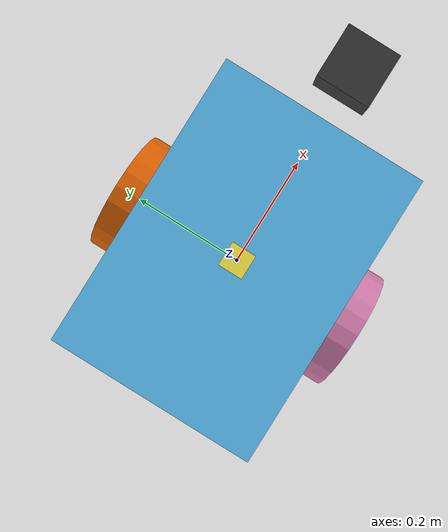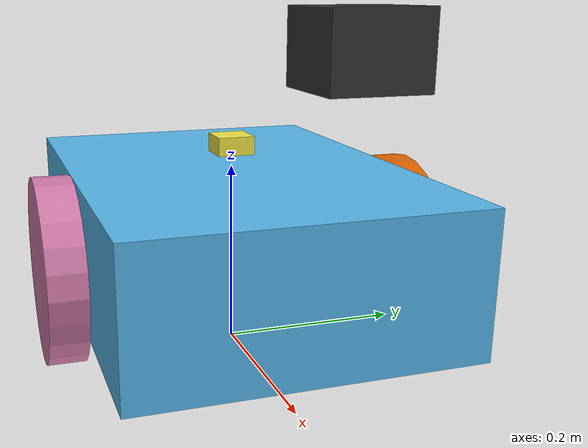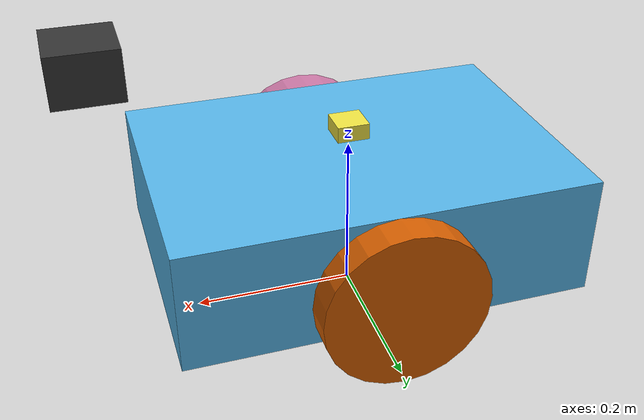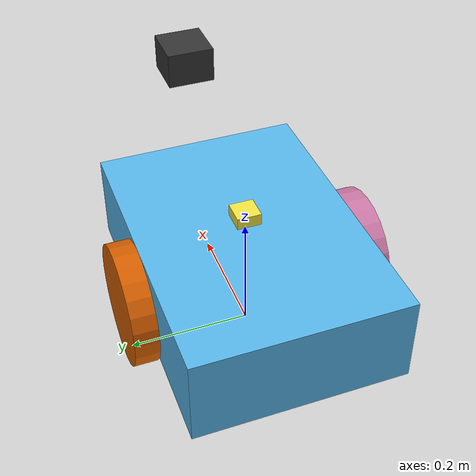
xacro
<?xml version="1.0"?>

<robot xmlns:xacro="http://www.ros.org/wiki/xacro">

    <!-- 机器人尺寸参数 -->

    <xacro:property name="base_length" value="0.50"/>
    <xacro:property name="base_width" value="0.35"/>
    <xacro:property name="base_height" value="0.15"/>

    <xacro:property name="wheel_radius" value="0.10"/>
    <xacro:property name="wheel_width" value="0.04"/>
    <xacro:property name="wheel_y" value="0.195"/>

    <!-- base_footprint -->

    <link name="base_footprint"/>

    <joint name="base_footprint_joint" type="fixed">

        <parent link="base_footprint"/>
        <child link="base_link"/>

        <origin xyz="0 0 0.125"
                rpy="0 0 0"/>

    </joint>

    <!-- base_link -->

    <link name="base_link">

        <visual>
            <origin xyz="0 0 0"
                    rpy="0 0 0"/>

            <geometry>
                <box size="${base_length}
                           ${base_width}
                           ${base_height}"/>
            </geometry>
        </visual>

        <collision>
            <origin xyz="0 0 0"
                    rpy="0 0 0"/>

            <geometry>
                <box size="${base_length}
                           ${base_width}
                           ${base_height}"/>
            </geometry>
        </collision>

        <inertial>
            <mass value="8.0"/>

            <!-- COM 后移 5cm：避免激光/相机前移使总 COM 越过驱动轮轴
                 支撑边界导致整车 nose-down 前倾（约 11.78°） -->
            <origin xyz="-0.05 0 0"
                    rpy="0 0 0"/>

            <inertia
                ixx="0.0967"
                ixy="0.0"
                ixz="0.0"
                iyy="0.1817"
                iyz="0.0"
                izz="0.2483"/>
        </inertial>

    </link>

    <link name='laser_link'>

        <inertial>
            <mass value="0.1"/>
            <origin xyz="0 0 0"/>
            <inertia
                ixx="0.0001"
                ixy="0.0"
                ixz="0.0"
                iyy="0.0001"
                iyz="0.0"
                izz="0.0001"/>
        </inertial>
    </link>

    <joint name="laser_joint" type="fixed">

        <parent link="base_link"/>
        <child link="laser_link"/>

        <origin xyz="0.5 0 0.12"
                rpy="0 0 0"/>
    </joint>

    <link name="imu_link">
        <visual>
         <geometry>
                <box size="0.04 0.04 0.02"/>
            </geometry>
        </visual>

        <collision>
            <geometry>
                <box size="0.04 0.04 0.02"/>
            </geometry>
        </collision>

        <inertial>
            <mass value="0.05"/>
            <inertia
            ixx="0.00001"
            ixy="0.0"
            ixz="0.0"
            iyy="0.00001"
            iyz="0.0"
            izz="0.00001"/>
        </inertial>
    </link>

    <joint name="imu_joint" type="fixed">
        <parent link="base_link"/>
        <child link="imu_link"/>
        <origin xyz="0 0 0.10" rpy="0 0 0"/>
    </joint>
    <gazebo reference="imu_joint">
        <preserveFixedJoint>true</preserveFixedJoint>
    </gazebo>

    <!-- Camera Link -->
<link name="camera_link">

    <visual>
        <origin xyz="0 0 0" rpy="0 0 0"/>
        <geometry>
            <box size="0.08 0.08 0.06"/>
        </geometry>
        <material name="camera_gray">
            <color rgba="0.2 0.2 0.2 1"/>
        </material>
    </visual>

    <collision>
        <origin xyz="0 0 0" rpy="0 0 0"/>
        <geometry>
            <box size="0.08 0.08 0.06"/>
        </geometry>
    </collision>

    <inertial>
        <mass value="0.05"/>
        <origin xyz="0 0 0" rpy="0 0 0"/>
        <inertia
            ixx="0.00002"
            iyy="0.00002"
            izz="0.00002"
            ixy="0.0"
            ixz="0.0"
            iyz="0.0"/>
    </inertial>

</link>

<!-- Camera fixed joint -->
<joint name="camera_joint" type="fixed">

    <parent link="base_link"/>
    <child link="camera_link"/>

    <origin xyz="0.30 0 0.22" rpy="0 0 0"/>

</joint>

    <!-- 轮子宏 -->

    <xacro:macro name="wheel" params="prefix y_pos">

        <link name="${prefix}_wheel_link">

            <visual>
                <origin xyz="0 0 0"
                        rpy="1.5708 0 0"/>

                <geometry>
                    <cylinder
                        radius="${wheel_radius}"
                        length="${wheel_width}"/>
                </geometry>
            </visual>

            <collision>
                <origin xyz="0 0 0"
                        rpy="1.5708 0 0"/>

                <geometry>
                    <cylinder
                        radius="${wheel_radius}"
                        length="${wheel_width}"/>
                </geometry>
            </collision>

            <inertial>
                <mass value="0.8"/>

                <origin xyz="0 0 0"
                        rpy="0 0 0"/>

                <inertia
                    ixx="0.002107"
                    ixy="0.0"
                    ixz="0.0"
                    iyy="0.004"
                    iyz="0.0"
                    izz="0.002107"/>
            </inertial>

        </link>

        <joint name="${prefix}_wheel_joint"
               type="continuous">

            <parent link="base_link"/>
            <child link="${prefix}_wheel_link"/>

            <origin
                xyz="0 ${y_pos} -0.025"
                rpy="0 0 0"/>

            <axis xyz="0 1 0"/>

        </joint>

    </xacro:macro>

    <!-- 左轮 -->
    <xacro:wheel
        prefix="left"
        y_pos="${wheel_y}"/>

    <!-- 右轮 -->
    <xacro:wheel
        prefix="right"
        y_pos="${-wheel_y}"/>

    <!-- 后万向轮 -->

    <link name="caster_link">

        <visual>
            <geometry>
                <sphere radius="0.05"/>
            </geometry>
        </visual>

        <collision>
            <geometry>
                <sphere radius="0.05"/>
            </geometry>
        </collision>

        <inertial>
            <mass value="0.2"/>

            <inertia
                ixx="0.0002"
                ixy="0"
                ixz="0"
                iyy="0.0002"
                iyz="0"
                izz="0.0002"/>
        </inertial>

    </link>

    <joint name="caster_joint"
           type="fixed">

        <parent link="base_link"/>
        <child link="caster_link"/>

        <origin
            xyz="-0.18 0 -0.075"
            rpy="0 0 0"/>

    </joint>

</robot>
